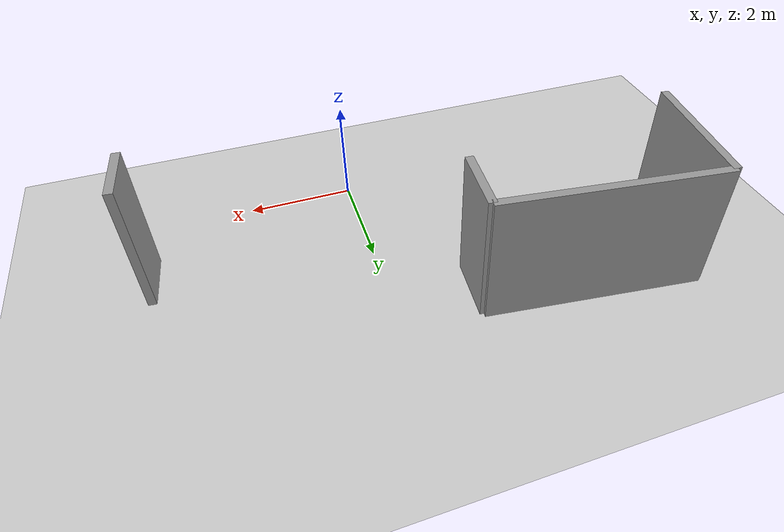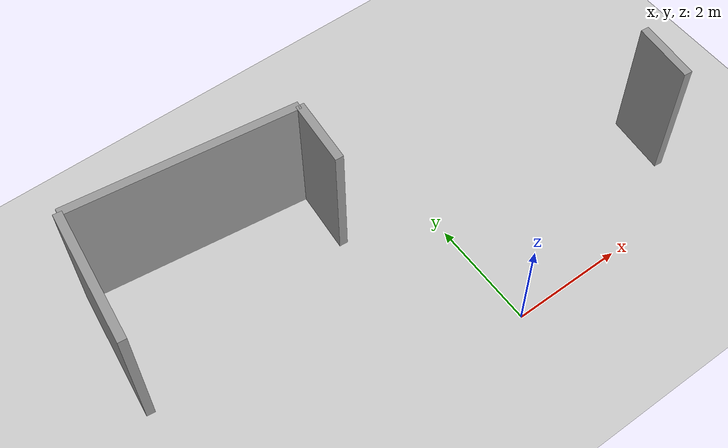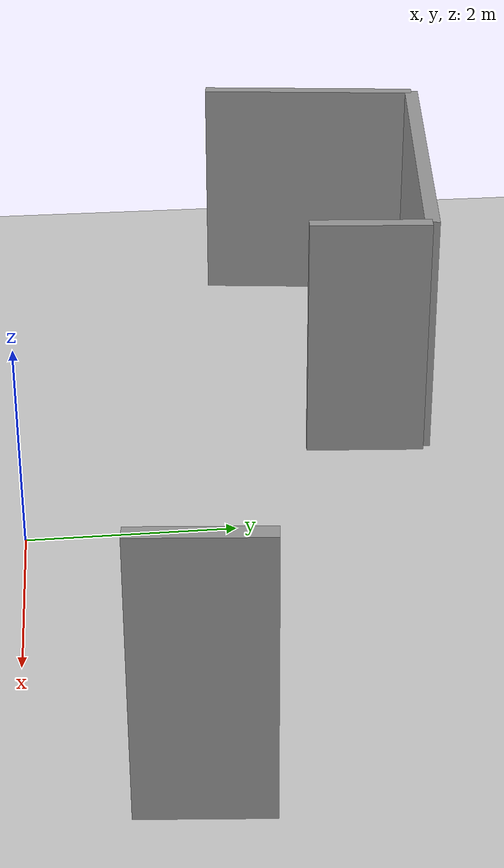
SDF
<?xml version='1.0'?>
<sdf version='1.7'>
  <world name='default'>
    <light name='sun' type='directional'>
      <cast_shadows>1</cast_shadows>
      <pose>0 0 10 0 -0 0</pose>
      <diffuse>0.8 0.8 0.8 1</diffuse>
      <specular>0.2 0.2 0.2 1</specular>
      <attenuation>
        <range>1000</range>
        <constant>0.9</constant>
        <linear>0.01</linear>
        <quadratic>0.001</quadratic>
      </attenuation>
      <direction>-0.5 0.1 -0.9</direction>
      <spot>
        <inner_angle>0</inner_angle>
        <outer_angle>0</outer_angle>
        <falloff>0</falloff>
      </spot>
    </light>
    <model name='ground_plane'>
      <static>1</static>
      <link name='link'>
        <collision name='collision'>
          <geometry>
            <plane>
              <normal>0 0 1</normal>
              <size>100 100</size>
            </plane>
          </geometry>
          <surface>
            <friction>
              <ode>
                <mu>100</mu>
                <mu2>50</mu2>
              </ode>
              <torsional>
                <ode/>
              </torsional>
            </friction>
            <contact>
              <ode/>
            </contact>
            <bounce/>
          </surface>
          <max_contacts>10</max_contacts>
        </collision>
        <visual name='visual'>
          <cast_shadows>0</cast_shadows>
          <geometry>
            <plane>
              <normal>0 0 1</normal>
              <size>100 100</size>
            </plane>
          </geometry>
          <material>
            <script>
              <uri>file://media/materials/scripts/gazebo.material</uri>
              <name>Gazebo/Grey</name>
            </script>
          </material>
        </visual>
        <self_collide>0</self_collide>
        <enable_wind>0</enable_wind>
        <kinematic>0</kinematic>
      </link>
    </model>
    <gravity>0 0 -9.8</gravity>
    <magnetic_field>6e-06 2.3e-05 -4.2e-05</magnetic_field>
    <atmosphere type='adiabatic'/>
    <physics type='ode'>
      <max_step_size>0.001</max_step_size>
      <real_time_factor>1</real_time_factor>
      <real_time_update_rate>1000</real_time_update_rate>
    </physics>
    <scene>
      <ambient>0.4 0.4 0.4 1</ambient>
      <background>0.7 0.7 0.7 1</background>
      <shadows>1</shadows>
    </scene>
    <audio>
      <device>default</device>
    </audio>
    <wind/>
    <spherical_coordinates>
      <surface_model>EARTH_WGS84</surface_model>
      <latitude_deg>0</latitude_deg>
      <longitude_deg>0</longitude_deg>
      <elevation>0</elevation>
      <heading_deg>0</heading_deg>
    </spherical_coordinates>
    <model name='simple_world_test'>
      <pose>0 0 0 0 -0 0</pose>
      <link name='Wall_0'>
        <collision name='Wall_0_Collision'>
          <geometry>
            <box>
              <size>2.418677324489564 0.15 2.5</size>
            </box>
          </geometry>
          <pose>0 0 1.25 0 -0 0</pose>
          <max_contacts>10</max_contacts>
          <surface>
            <contact>
              <ode/>
            </contact>
            <bounce/>
            <friction>
              <torsional>
                <ode/>
              </torsional>
              <ode/>
            </friction>
          </surface>
        </collision>
        <visual name='Wall_0_Visual'>
          <pose>0 0 1.25 0 -0 0</pose>
          <geometry>
            <box>
              <size>2.418677324489564 0.15 2.5</size>
            </box>
          </geometry>
          <material>
            <script>
              <uri>file://media/materials/scripts/gazebo.material</uri>
              <name>Gazebo/Grey</name>
            </script>
            <ambient>1 1 1 1</ambient>
          </material>
          <meta>
            <layer>0</layer>
          </meta>
        </visual>
        <pose>-5.546787486582831 3.3613728320362632 0 0 -0 1.4464413322481349</pose>
        <self_collide>0</self_collide>
        <enable_wind>0</enable_wind>
        <kinematic>0</kinematic>
      </link>
      <link name='Wall_1'>
        <collision name='Wall_1_Collision'>
          <geometry>
            <box>
              <size>4.031128874149275 0.15 2.5</size>
            </box>
          </geometry>
          <pose>0 0 1.25 0 -0 0</pose>
          <max_contacts>10</max_contacts>
          <surface>
            <contact>
              <ode/>
            </contact>
            <bounce/>
            <friction>
              <torsional>
                <ode/>
              </torsional>
              <ode/>
            </friction>
          </surface>
        </collision>
        <visual name='Wall_1_Visual'>
          <pose>0 0 1.25 0 -0 0</pose>
          <geometry>
            <box>
              <size>4.031128874149275 0.15 2.5</size>
            </box>
          </geometry>
          <material>
            <script>
              <uri>file://media/materials/scripts/gazebo.material</uri>
              <name>Gazebo/Grey</name>
            </script>
            <ambient>1 1 1 1</ambient>
          </material>
          <meta>
            <layer>0</layer>
          </meta>
        </visual>
        <pose>-3.3967874865828307 4.3113728320362625 0 0 -0 -0.12435499454676144</pose>
        <self_collide>0</self_collide>
        <enable_wind>0</enable_wind>
        <kinematic>0</kinematic>
      </link>
      <link name='Wall_2'>
        <collision name='Wall_2_Collision'>
          <geometry>
            <box>
              <size>1.204159457879229 0.15 2.5</size>
            </box>
          </geometry>
          <pose>0 0 1.25 0 -0 0</pose>
          <max_contacts>10</max_contacts>
          <surface>
            <contact>
              <ode/>
            </contact>
            <bounce/>
            <friction>
              <torsional>
                <ode/>
              </torsional>
              <ode/>
            </friction>
          </surface>
        </collision>
        <visual name='Wall_2_Visual'>
          <pose>0 0 1.25 0 -0 0</pose>
          <geometry>
            <box>
              <size>1.204159457879229 0.15 2.5</size>
            </box>
          </geometry>
          <material>
            <script>
              <uri>file://media/materials/scripts/gazebo.material</uri>
              <name>Gazebo/Grey</name>
            </script>
            <ambient>1 1 1 1</ambient>
          </material>
          <meta>
            <layer>0</layer>
          </meta>
        </visual>
        <pose>-1.446787486582831 3.461372832036263 0 0 -0 -1.653937558683338</pose>
        <self_collide>0</self_collide>
        <enable_wind>0</enable_wind>
        <kinematic>0</kinematic>
      </link>
      <link name='Wall_3'>
        <collision name='Wall_3_Collision'>
          <geometry>
            <box>
              <size>1.1045361017187258 0.15 2.5</size>
            </box>
          </geometry>
          <pose>0 0 1.25 0 -0 0</pose>
          <max_contacts>10</max_contacts>
          <surface>
            <contact>
              <ode/>
            </contact>
            <bounce/>
            <friction>
              <torsional>
                <ode/>
              </torsional>
              <ode/>
            </friction>
          </surface>
        </collision>
        <visual name='Wall_3_Visual'>
          <pose>0 0 1.25 0 -0 0</pose>
          <geometry>
            <box>
              <size>1.1045361017187258 0.15 2.5</size>
            </box>
          </geometry>
          <material>
            <script>
              <uri>file://media/materials/scripts/gazebo.material</uri>
              <name>Gazebo/Grey</name>
            </script>
            <ambient>1 1 1 1</ambient>
          </material>
          <meta>
            <layer>0</layer>
          </meta>
        </visual>
        <pose>3.953212513417169 1.411372832036263 0 0 -0 -1.6614562139956426</pose>
        <self_collide>0</self_collide>
        <enable_wind>0</enable_wind>
        <kinematic>0</kinematic>
      </link>
      <static>1</static>
    </model>
  </world>
</sdf>
